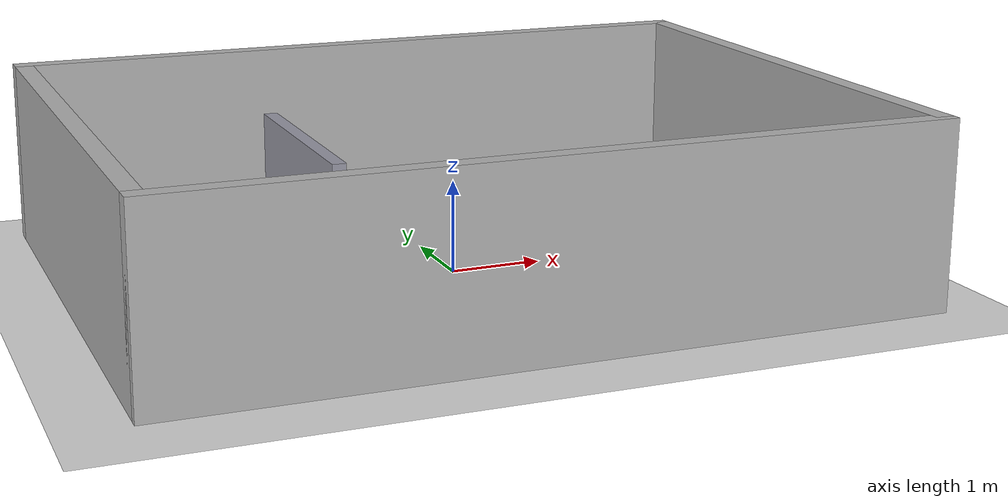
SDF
<?xml version="1.0" ?>
<sdf version="1.8">
  <world name="crime_scene">
    <physics name="1ms" type="ignored">
      <max_step_size>0.001</max_step_size>
      <real_time_factor>1.0</real_time_factor>
    </physics>

    <plugin filename="gz-sim-physics-system" name="gz::sim::systems::Physics"/>
    <plugin filename="gz-sim-user-commands-system" name="gz::sim::systems::UserCommands"/>
    <plugin filename="gz-sim-scene-broadcaster-system" name="gz::sim::systems::SceneBroadcaster"/>
    <plugin filename="gz-sim-sensors-system" name="gz::sim::systems::Sensors">
      <render_engine>ogre2</render_engine>
    </plugin>
    <plugin filename="gz-sim-imu-system" name="gz::sim::systems::Imu"/>

    <!-- Sunlight -->
    <light type="directional" name="sun">
      <cast_shadows>true</cast_shadows>
      <pose>0 0 10 0 0 0</pose>
      <diffuse>0.8 0.8 0.8 1</diffuse>
      <specular>0.2 0.2 0.2 1</specular>
      <direction>-0.5 0.1 -0.9</direction>
    </light>

    <!-- Ground plane -->
    <model name="ground_plane">
      <static>true</static>
      <link name="link">
        <collision name="collision">
          <geometry>
            <plane>
              <normal>0 0 1</normal>
              <size>20 20</size>
            </plane>
          </geometry>
        </collision>
        <visual name="visual">
          <geometry>
            <plane>
              <normal>0 0 1</normal>
              <size>20 20</size>
            </plane>
          </geometry>
          <material>
            <ambient>0.85 0.85 0.85 1</ambient>
            <diffuse>0.85 0.85 0.85 1</diffuse>
          </material>
        </visual>
      </link>
    </model>

    <!-- Crime Scene Outer Walls (8m x 6m Room) -->
    <!-- North Wall -->
    <model name="wall_north">
      <static>true</static>
      <pose>0 3.0 1.0 0 0 0</pose>
      <link name="link">
        <collision name="col"><geometry><box><size>8.2 0.2 2.0</size></box></geometry></collision>
        <visual name="vis"><geometry><box><size>8.2 0.2 2.0</size></box></geometry><material><ambient>0.7 0.7 0.7 1</ambient></material></visual>
      </link>
    </model>

    <!-- South Wall -->
    <model name="wall_south">
      <static>true</static>
      <pose>0 -3.0 1.0 0 0 0</pose>
      <link name="link">
        <collision name="col"><geometry><box><size>8.2 0.2 2.0</size></box></geometry></collision>
        <visual name="vis"><geometry><box><size>8.2 0.2 2.0</size></box></geometry><material><ambient>0.7 0.7 0.7 1</ambient></material></visual>
      </link>
    </model>

    <!-- East Wall -->
    <model name="wall_east">
      <static>true</static>
      <pose>4.0 0 1.0 0 0 0</pose>
      <link name="link">
        <collision name="col"><geometry><box><size>0.2 6.0 2.0</size></box></geometry></collision>
        <visual name="vis"><geometry><box><size>0.2 6.0 2.0</size></box></geometry><material><ambient>0.7 0.7 0.7 1</ambient></material></visual>
      </link>
    </model>

    <!-- West Wall -->
    <model name="wall_west">
      <static>true</static>
      <pose>-4.0 0 1.0 0 0 0</pose>
      <link name="link">
        <collision name="col"><geometry><box><size>0.2 6.0 2.0</size></box></geometry></collision>
        <visual name="vis"><geometry><box><size>0.2 6.0 2.0</size></box></geometry><material><ambient>0.7 0.7 0.7 1</ambient></material></visual>
      </link>
    </model>

    <!-- Interior Crime Scene Table / Obstacle -->
    <model name="evidence_table">
      <static>true</static>
      <pose>1.5 1.0 0.4 0 0 0</pose>
      <link name="link">
        <collision name="col"><geometry><box><size>1.4 0.8 0.8</size></box></geometry></collision>
        <visual name="vis"><geometry><box><size>1.4 0.8 0.8</size></box></geometry><material><ambient>0.4 0.25 0.1 1</ambient></material></visual>
      </link>
    </model>

    <!-- Partition / Divider Wall -->
    <model name="divider_wall">
      <static>true</static>
      <pose>-1.5 0.5 0.75 0 0 0</pose>
      <link name="link">
        <collision name="col"><geometry><box><size>0.15 2.5 1.5</size></box></geometry></collision>
        <visual name="vis"><geometry><box><size>0.15 2.5 1.5</size></box></geometry><material><ambient>0.6 0.6 0.65 1</ambient></material></visual>
      </link>
    </model>

    <!-- Simulated Evidence Object 1 (Red stain marker on floor) -->
    <model name="evidence_stain_1">
      <static>true</static>
      <pose>2.0 -1.0 0.002 0 0 0</pose>
      <link name="link">
        <visual name="vis">
          <geometry><cylinder><radius>0.20</radius><length>0.004</length></cylinder></geometry>
          <material><ambient>0.8 0.1 0.1 1.0</ambient><diffuse>0.8 0.1 0.1 1.0</diffuse></material>
        </visual>
      </link>
    </model>

    <!-- Simulated Evidence Object 2 (Weapon-like box marker) -->
    <model name="evidence_item_2">
      <static>true</static>
      <pose>1.5 1.0 0.82 0 0 0.5</pose>
      <link name="link">
        <collision name="col"><geometry><box><size>0.25 0.06 0.04</size></box></geometry></collision>
        <visual name="vis">
          <geometry><box><size>0.25 0.06 0.04</size></box></geometry>
          <material><ambient>0.1 0.1 0.1 1.0</ambient></material>
        </visual>
      </link>
    </model>

  </world>
</sdf>
